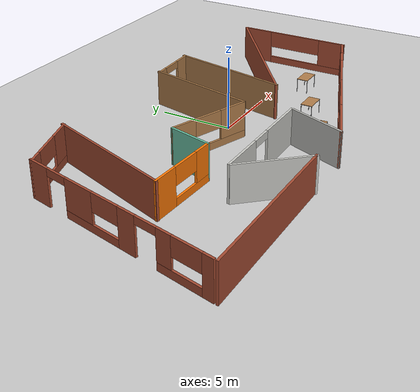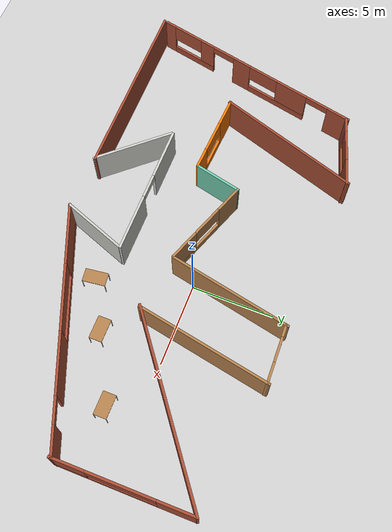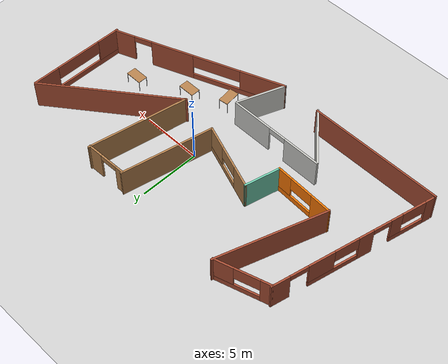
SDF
<sdf version="1.6">
 <world name="default">
  <model name="ground_plane">
   <static>1</static>
   <link name="link">
    <collision name="collision">
     <geometry><plane><normal>0 0 1</normal><size>100 100</size></plane></geometry>
     <surface><friction><ode><mu>100</mu><mu2>50</mu2></ode></friction></surface>
    </collision>
    <visual name="visual">
     <cast_shadows>0</cast_shadows>
     <geometry><plane><normal>0 0 1</normal><size>100 100</size></plane></geometry>
     <material>
      <script><uri>file://media/materials/scripts/gazebo.material</uri><name>Gazebo/Grey</name></script>
     </material>
    </visual>
   </link>
  </model>
  <model name="my_building">
   <pose>-1.82357 -0.88162 0 0 -0 0</pose>
   <link name="Wall_10">
    <pose>-7.20518 -1.23967 0 0 0 -0.053362</pose>
    <visual name="Wall_10_Visual_0">
     <pose>-1.65873 0 1.25 0 -0 0</pose>
     <geometry><box><size>1.79088 0.15 2.5</size></box></geometry>
     <material>
      <script><uri>file://media/materials/scripts/gazebo.material</uri><name>Gazebo/Grey</name></script>
      <ambient>0.996078 0.47451 0.0196078 1</ambient>
     </material>
    </visual>
    <collision name="Wall_10_Collision_0">
     <geometry><box><size>1.79088 0.15 2.5</size></box></geometry>
     <pose>-1.65873 0 1.25 0 -0 0</pose>
    </collision>
    <visual name="Wall_10_Visual_1">
     <pose>0.895442 0 0.25 0 -0 0</pose>
     <geometry><box><size>3.31746 0.15 0.5</size></box></geometry>
     <material>
      <script><uri>file://media/materials/scripts/gazebo.material</uri><name>Gazebo/Grey</name></script>
      <ambient>0.996078 0.47451 0.0196078 1</ambient>
     </material>
    </visual>
    <collision name="Wall_10_Collision_1">
     <geometry><box><size>3.31746 0.15 0.5</size></box></geometry>
     <pose>0.895442 0 0.25 0 -0 0</pose>
    </collision>
    <visual name="Wall_10_Visual_2">
     <pose>1.89544 0 1.5 0 -0 0</pose>
     <geometry><box><size>1.31746 0.15 2</size></box></geometry>
     <material>
      <script><uri>file://media/materials/scripts/gazebo.material</uri><name>Gazebo/Grey</name></script>
      <ambient>0.996078 0.47451 0.0196078 1</ambient>
     </material>
    </visual>
    <collision name="Wall_10_Collision_2">
     <geometry><box><size>1.31746 0.15 2</size></box></geometry>
     <pose>1.89544 0 1.5 0 -0 0</pose>
    </collision>
    <visual name="Wall_10_Visual_3">
     <pose>0.236711 0 1.9 0 -0 0</pose>
     <geometry><box><size>2 0.15 1.2</size></box></geometry>
     <material>
      <script><uri>file://media/materials/scripts/gazebo.material</uri><name>Gazebo/Grey</name></script>
      <ambient>0.996078 0.47451 0.0196078 1</ambient>
     </material>
    </visual>
    <collision name="Wall_10_Collision_3">
     <geometry><box><size>2 0.15 1.2</size></box></geometry>
     <pose>0.236711 0 1.9 0 -0 0</pose>
    </collision>
   </link>
   <link name="Wall_11">
    <collision name="Wall_11_Collision">
     <geometry><box><size>3.02948 0.15 2.5</size></box></geometry>
     <pose>0 0 1.25 0 -0 0</pose>
    </collision>
    <visual name="Wall_11_Visual">
     <pose>0 0 1.25 0 -0 0</pose>
     <geometry><box><size>3.02948 0.15 2.5</size></box></geometry>
     <material>
      <script><uri>file://media/materials/scripts/gazebo.material</uri><name>Gazebo/Grey</name></script>
      <ambient>0.435294 0.796078 0.67451 1</ambient>
     </material>
    </visual>
    <pose>-4.3944 0.028361 0 0 -0 1.33612</pose>
   </link>
   <link name="Wall_12">
    <pose>-1.39731 0.461222 0 0 0 -0.348539</pose>
    <visual name="Wall_12_Visual_0">
     <pose>-1.99563 0 1.25 0 -0 0</pose>
     <geometry><box><size>1.82401 0.15 2.5</size></box></geometry>
     <material>
      <script><uri>file://media/materials/scripts/gazebo.material</uri><name>Gazebo/Wood</name></script>
      <ambient>0.435294 0.796078 0.67451 1</ambient>
     </material>
    </visual>
    <collision name="Wall_12_Collision_0">
     <geometry><box><size>1.82401 0.15 2.5</size></box></geometry>
     <pose>-1.99563 0 1.25 0 -0 0</pose>
    </collision>
    <visual name="Wall_12_Visual_1">
     <pose>0.912006 0 0.25 0 -0 0</pose>
     <geometry><box><size>3.99125 0.15 0.5</size></box></geometry>
     <material>
      <script><uri>file://media/materials/scripts/gazebo.material</uri><name>Gazebo/Wood</name></script>
      <ambient>0.435294 0.796078 0.67451 1</ambient>
     </material>
    </visual>
    <collision name="Wall_12_Collision_1">
     <geometry><box><size>3.99125 0.15 0.5</size></box></geometry>
     <pose>0.912006 0 0.25 0 -0 0</pose>
    </collision>
    <visual name="Wall_12_Visual_2">
     <pose>1.91201 0 1.5 0 -0 0</pose>
     <geometry><box><size>1.99125 0.15 2</size></box></geometry>
     <material>
      <script><uri>file://media/materials/scripts/gazebo.material</uri><name>Gazebo/Wood</name></script>
      <ambient>0.435294 0.796078 0.67451 1</ambient>
     </material>
    </visual>
    <collision name="Wall_12_Collision_2">
     <geometry><box><size>1.99125 0.15 2</size></box></geometry>
     <pose>1.91201 0 1.5 0 -0 0</pose>
    </collision>
    <visual name="Wall_12_Visual_3">
     <pose>-0.083621 0 1.9 0 -0 0</pose>
     <geometry><box><size>2 0.15 1.2</size></box></geometry>
     <material>
      <script><uri>file://media/materials/scripts/gazebo.material</uri><name>Gazebo/Wood</name></script>
      <ambient>0.435294 0.796078 0.67451 1</ambient>
     </material>
    </visual>
    <collision name="Wall_12_Collision_3">
     <geometry><box><size>2 0.15 1.2</size></box></geometry>
     <pose>-0.083621 0 1.9 0 -0 0</pose>
    </collision>
   </link>
   <link name="Wall_13">
    <collision name="Wall_13_Collision">
     <geometry><box><size>7.73883 0.15 2.5</size></box></geometry>
     <pose>0 0 1.25 0 -0 0</pose>
    </collision>
    <visual name="Wall_13_Visual">
     <pose>0 0 1.25 0 -0 0</pose>
     <geometry><box><size>7.73883 0.15 2.5</size></box></geometry>
     <material>
      <script><uri>file://media/materials/scripts/gazebo.material</uri><name>Gazebo/Wood</name></script>
      <ambient>0.435294 0.796078 0.67451 1</ambient>
     </material>
    </visual>
    <pose>2.1093 3.20845 0 0 -0 1.36539</pose>
   </link>
   <link name="Wall_14">
    <pose>4.60393 6.87033 0 0 -0 0.030657</pose>
    <visual name="Wall_14_Visual_0">
     <pose>-1.41036 0 1.25 0 -0 0</pose>
     <geometry><box><size>0.772303 0.15 2.5</size></box></geometry>
     <material>
      <script><uri>file://media/materials/scripts/gazebo.material</uri><name>Gazebo/Wood</name></script>
      <ambient>1 1 1 1</ambient>
     </material>
    </visual>
    <collision name="Wall_14_Collision_0">
     <geometry><box><size>0.772303 0.15 2.5</size></box></geometry>
     <pose>-1.41036 0 1.25 0 -0 0</pose>
    </collision>
    <visual name="Wall_14_Visual_1">
     <pose>1.13615 0 1.25 0 -0 0</pose>
     <geometry><box><size>1.32072 0.15 2.5</size></box></geometry>
     <material>
      <script><uri>file://media/materials/scripts/gazebo.material</uri><name>Gazebo/Wood</name></script>
      <ambient>1 1 1 1</ambient>
     </material>
    </visual>
    <collision name="Wall_14_Collision_1">
     <geometry><box><size>1.32072 0.15 2.5</size></box></geometry>
     <pose>1.13615 0 1.25 0 -0 0</pose>
    </collision>
    <visual name="Wall_14_Visual_2">
     <pose>-0.27421 0 2.25 0 -0 0</pose>
     <geometry><box><size>1.5 0.15 0.5</size></box></geometry>
     <material>
      <script><uri>file://media/materials/scripts/gazebo.material</uri><name>Gazebo/Wood</name></script>
      <ambient>1 1 1 1</ambient>
     </material>
    </visual>
    <collision name="Wall_14_Collision_2">
     <geometry><box><size>1.5 0.15 0.5</size></box></geometry>
     <pose>-0.27421 0 2.25 0 -0 0</pose>
    </collision>
   </link>
   <link name="Wall_15">
    <collision name="Wall_15_Collision">
     <geometry><box><size>8.47447 0.15 2.5</size></box></geometry>
     <pose>0 0 1.25 0 -0 0</pose>
    </collision>
    <visual name="Wall_15_Visual">
     <pose>0 0 1.25 0 -0 0</pose>
     <geometry><box><size>8.47447 0.15 2.5</size></box></geometry>
     <material>
      <script><uri>file://media/materials/scripts/gazebo.material</uri><name>Gazebo/Wood</name></script>
      <ambient>1 1 1 1</ambient>
     </material>
    </visual>
    <pose>5.55071 2.93899 0 0 0 -1.75783</pose>
   </link>
   <link name="Wall_16">
    <collision name="Wall_16_Collision">
     <geometry><box><size>11.8484 0.15 2.5</size></box></geometry>
     <pose>0 0 1.25 0 -0 0</pose>
    </collision>
    <visual name="Wall_16_Visual">
     <pose>0 0 1.25 0 -0 0</pose>
     <geometry><box><size>11.8484 0.15 2.5</size></box></geometry>
     <material>
      <script><uri>file://media/materials/scripts/gazebo.material</uri><name>Gazebo/Bricks</name></script>
      <ambient>0.760784 0.662745 0.627451 1</ambient>
     </material>
    </visual>
    <pose>9.36619 2.38481 0 0 -0 0.649059</pose>
   </link>
   <link name="Wall_17">
    <pose>14.026 1.76474 0 0 0 -1.5708</pose>
    <visual name="Wall_17_Visual_0">
     <pose>-3.02356 0 1.25 0 -0 0</pose>
     <geometry><box><size>2.20289 0.15 2.5</size></box></geometry>
     <material>
      <script><uri>file://media/materials/scripts/gazebo.material</uri><name>Gazebo/Bricks</name></script>
      <ambient>0.760784 0.662745 0.627451 1</ambient>
     </material>
    </visual>
    <collision name="Wall_17_Collision_0">
     <geometry><box><size>2.20289 0.15 2.5</size></box></geometry>
     <pose>-3.02356 0 1.25 0 -0 0</pose>
    </collision>
    <visual name="Wall_17_Visual_1">
     <pose>1.10144 0 0.25 0 -0 0</pose>
     <geometry><box><size>6.04711 0.15 0.5</size></box></geometry>
     <material>
      <script><uri>file://media/materials/scripts/gazebo.material</uri><name>Gazebo/Bricks</name></script>
      <ambient>0.760784 0.662745 0.627451 1</ambient>
     </material>
    </visual>
    <collision name="Wall_17_Collision_1">
     <geometry><box><size>6.04711 0.15 0.5</size></box></geometry>
     <pose>1.10144 0 0.25 0 -0 0</pose>
    </collision>
    <visual name="Wall_17_Visual_2">
     <pose>3.10144 0 1.5 0 -0 0</pose>
     <geometry><box><size>2.04711 0.15 2</size></box></geometry>
     <material>
      <script><uri>file://media/materials/scripts/gazebo.material</uri><name>Gazebo/Bricks</name></script>
      <ambient>0.760784 0.662745 0.627451 1</ambient>
     </material>
    </visual>
    <collision name="Wall_17_Collision_2">
     <geometry><box><size>2.04711 0.15 2</size></box></geometry>
     <pose>3.10144 0 1.5 0 -0 0</pose>
    </collision>
    <visual name="Wall_17_Visual_3">
     <pose>0.077887 0 1.9 0 -0 0</pose>
     <geometry><box><size>4 0.15 1.2</size></box></geometry>
     <material>
      <script><uri>file://media/materials/scripts/gazebo.material</uri><name>Gazebo/Bricks</name></script>
      <ambient>0.760784 0.662745 0.627451 1</ambient>
     </material>
    </visual>
    <collision name="Wall_17_Collision_3">
     <geometry><box><size>4 0.15 1.2</size></box></geometry>
     <pose>0.077887 0 1.9 0 -0 0</pose>
    </collision>
   </link>
   <link name="Wall_18">
    <pose>7.23317 -4.80054 0 0 0 -2.77337</pose>
    <visual name="Wall_18_Visual_0">
     <pose>-6.47131 0 1.25 0 -0 0</pose>
     <geometry><box><size>1.76906 0.15 2.5</size></box></geometry>
     <material>
      <script><uri>file://media/materials/scripts/gazebo.material</uri><name>Gazebo/Bricks</name></script>
      <ambient>0.760784 0.662745 0.627451 1</ambient>
     </material>
    </visual>
    <collision name="Wall_18_Collision_0">
     <geometry><box><size>1.76906 0.15 2.5</size></box></geometry>
     <pose>-6.47131 0 1.25 0 -0 0</pose>
    </collision>
    <visual name="Wall_18_Visual_1">
     <pose>-2.27515 0 1.25 0 -0 0</pose>
     <geometry><box><size>3.62326 0.15 2.5</size></box></geometry>
     <material>
      <script><uri>file://media/materials/scripts/gazebo.material</uri><name>Gazebo/Bricks</name></script>
      <ambient>0.760784 0.662745 0.627451 1</ambient>
     </material>
    </visual>
    <collision name="Wall_18_Collision_1">
     <geometry><box><size>3.62326 0.15 2.5</size></box></geometry>
     <pose>-2.27515 0 1.25 0 -0 0</pose>
    </collision>
    <visual name="Wall_18_Visual_2">
     <pose>3.44616 0 0.25 0 -0 0</pose>
     <geometry><box><size>7.81937 0.15 0.5</size></box></geometry>
     <material>
      <script><uri>file://media/materials/scripts/gazebo.material</uri><name>Gazebo/Bricks</name></script>
      <ambient>0.760784 0.662745 0.627451 1</ambient>
     </material>
    </visual>
    <collision name="Wall_18_Collision_2">
     <geometry><box><size>7.81937 0.15 0.5</size></box></geometry>
     <pose>3.44616 0 0.25 0 -0 0</pose>
    </collision>
    <visual name="Wall_18_Visual_3">
     <pose>5.44616 0 1.5 0 -0 0</pose>
     <geometry><box><size>3.81937 0.15 2</size></box></geometry>
     <material>
      <script><uri>file://media/materials/scripts/gazebo.material</uri><name>Gazebo/Bricks</name></script>
      <ambient>0.760784 0.662745 0.627451 1</ambient>
     </material>
    </visual>
    <collision name="Wall_18_Collision_3">
     <geometry><box><size>3.81937 0.15 2</size></box></geometry>
     <pose>5.44616 0 1.5 0 -0 0</pose>
    </collision>
    <visual name="Wall_18_Visual_4">
     <pose>1.53648 0 1.9 0 -0 0</pose>
     <geometry><box><size>4 0.15 1.2</size></box></geometry>
     <material>
      <script><uri>file://media/materials/scripts/gazebo.material</uri><name>Gazebo/Bricks</name></script>
      <ambient>0.760784 0.662745 0.627451 1</ambient>
     </material>
    </visual>
    <collision name="Wall_18_Collision_4">
     <geometry><box><size>4 0.15 1.2</size></box></geometry>
     <pose>1.53648 0 1.9 0 -0 0</pose>
    </collision>
    <visual name="Wall_18_Visual_5">
     <pose>-4.83679 0 2.25 0 -0 0</pose>
     <geometry><box><size>1.5 0.15 0.5</size></box></geometry>
     <material>
      <script><uri>file://media/materials/scripts/gazebo.material</uri><name>Gazebo/Bricks</name></script>
      <ambient>0.760784 0.662745 0.627451 1</ambient>
     </material>
    </visual>
    <collision name="Wall_18_Collision_5">
     <geometry><box><size>1.5 0.15 0.5</size></box></geometry>
     <pose>-4.83679 0 2.25 0 -0 0</pose>
    </collision>
   </link>
   <link name="Wall_19">
    <collision name="Wall_19_Collision">
     <geometry><box><size>4.1326 0.15 2.5</size></box></geometry>
     <pose>0 0 1.25 0 -0 0</pose>
    </collision>
    <visual name="Wall_19_Visual">
     <pose>0 0 1.25 0 -0 0</pose>
     <geometry><box><size>4.1326 0.15 2.5</size></box></geometry>
     <material>
      <script><uri>file://media/materials/scripts/gazebo.material</uri><name>Gazebo/CeilingTiled</name></script>
      <ambient>1 1 1 1</ambient>
     </material>
    </visual>
    <pose>1.14396 -5.5585 0 0 -0 1.20967</pose>
   </link>
   <link name="Wall_20">
    <pose>-2.20247 -3.5901 0 0 -0 3.14159</pose>
    <visual name="Wall_20_Visual_0">
     <pose>-2.34523 0 1.25 0 -0 0</pose>
     <geometry><box><size>3.55955 0.15 2.5</size></box></geometry>
     <material>
      <script><uri>file://media/materials/scripts/gazebo.material</uri><name>Gazebo/CeilingTiled</name></script>
      <ambient>0.921569 0.807843 0.615686 1</ambient>
     </material>
    </visual>
    <collision name="Wall_20_Collision_0">
     <geometry><box><size>3.55955 0.15 2.5</size></box></geometry>
     <pose>-2.34523 0 1.25 0 -0 0</pose>
    </collision>
    <visual name="Wall_20_Visual_1">
     <pose>2.52977 0 1.25 0 -0 0</pose>
     <geometry><box><size>3.19045 0.15 2.5</size></box></geometry>
     <material>
      <script><uri>file://media/materials/scripts/gazebo.material</uri><name>Gazebo/CeilingTiled</name></script>
      <ambient>0.921569 0.807843 0.615686 1</ambient>
     </material>
    </visual>
    <collision name="Wall_20_Collision_1">
     <geometry><box><size>3.19045 0.15 2.5</size></box></geometry>
     <pose>2.52977 0 1.25 0 -0 0</pose>
    </collision>
    <visual name="Wall_20_Visual_2">
     <pose>0.184548 0 2.25 0 -0 0</pose>
     <geometry><box><size>1.5 0.15 0.5</size></box></geometry>
     <material>
      <script><uri>file://media/materials/scripts/gazebo.material</uri><name>Gazebo/CeilingTiled</name></script>
      <ambient>0.921569 0.807843 0.615686 1</ambient>
     </material>
    </visual>
    <collision name="Wall_20_Collision_2">
     <geometry><box><size>1.5 0.15 0.5</size></box></geometry>
     <pose>0.184548 0 2.25 0 -0 0</pose>
    </collision>
   </link>
   <link name="Wall_21">
    <collision name="Wall_21_Collision">
     <geometry><box><size>5.09839 0.15 2.5</size></box></geometry>
     <pose>0 0 1.25 0 -0 0</pose>
    </collision>
    <visual name="Wall_21_Visual">
     <pose>0 0 1.25 0 -0 0</pose>
     <geometry><box><size>5.09839 0.15 2.5</size></box></geometry>
     <material>
      <script><uri>file://media/materials/scripts/gazebo.material</uri><name>Gazebo/CeilingTiled</name></script>
      <ambient>0.921569 0.807843 0.615686 1</ambient>
     </material>
    </visual>
    <pose>-4.60426 -5.54091 0 0 0 -0.841746</pose>
   </link>
   <link name="Wall_22">
    <collision name="Wall_22_Collision">
     <geometry><box><size>11.25 0.15 2.5</size></box></geometry>
     <pose>0 0 1.25 0 -0 0</pose>
    </collision>
    <visual name="Wall_22_Visual">
     <pose>0 0 1.25 0 -0 0</pose>
     <geometry><box><size>11.25 0.15 2.5</size></box></geometry>
     <material>
      <script><uri>file://media/materials/scripts/gazebo.material</uri><name>Gazebo/Bricks</name></script>
      <ambient>0.996078 0.47451 0.0196078 1</ambient>
     </material>
    </visual>
    <pose>-8.50604 -7.31583 0 0 -0 3.14159</pose>
   </link>
   <link name="Wall_7">
    <pose>-12.5684 -0.491172 0 0 -0 1.35294</pose>
    <visual name="Wall_7_Visual_0">
     <pose>-6.46291 0 1.25 0 -0 0</pose>
     <geometry><box><size>0.733183 0.15 2.5</size></box></geometry>
     <material>
      <script><uri>file://media/materials/scripts/gazebo.material</uri><name>Gazebo/Bricks</name></script>
      <ambient>0.996078 0.47451 0.0196078 1</ambient>
     </material>
    </visual>
    <collision name="Wall_7_Collision_0">
     <geometry><box><size>0.733183 0.15 2.5</size></box></geometry>
     <pose>-6.46291 0 1.25 0 -0 0</pose>
    </collision>
    <visual name="Wall_7_Visual_1">
     <pose>-0.982571 0 1.25 0 -0 0</pose>
     <geometry><box><size>1.23194 0.15 2.5</size></box></geometry>
     <material>
      <script><uri>file://media/materials/scripts/gazebo.material</uri><name>Gazebo/Bricks</name></script>
      <ambient>0.996078 0.47451 0.0196078 1</ambient>
     </material>
    </visual>
    <collision name="Wall_7_Collision_1">
     <geometry><box><size>1.23194 0.15 2.5</size></box></geometry>
     <pose>-0.982571 0 1.25 0 -0 0</pose>
    </collision>
    <visual name="Wall_7_Visual_2">
     <pose>6.05834 0 1.25 0 -0 0</pose>
     <geometry><box><size>1.54232 0.15 2.5</size></box></geometry>
     <material>
      <script><uri>file://media/materials/scripts/gazebo.material</uri><name>Gazebo/Bricks</name></script>
      <ambient>0.996078 0.47451 0.0196078 1</ambient>
     </material>
    </visual>
    <collision name="Wall_7_Collision_2">
     <geometry><box><size>1.54232 0.15 2.5</size></box></geometry>
     <pose>6.05834 0 1.25 0 -0 0</pose>
    </collision>
    <visual name="Wall_7_Visual_3">
     <pose>-4.59743 0 0.25 0 -0 0</pose>
     <geometry><box><size>2.99777 0.15 0.5</size></box></geometry>
     <material>
      <script><uri>file://media/materials/scripts/gazebo.material</uri><name>Gazebo/Bricks</name></script>
      <ambient>0.996078 0.47451 0.0196078 1</ambient>
     </material>
    </visual>
    <collision name="Wall_7_Collision_3">
     <geometry><box><size>2.99777 0.15 0.5</size></box></geometry>
     <pose>-4.59743 0 0.25 0 -0 0</pose>
    </collision>
    <visual name="Wall_7_Visual_4">
     <pose>1.71029 0 0.25 0 -0 0</pose>
     <geometry><box><size>4.15378 0.15 0.5</size></box></geometry>
     <material>
      <script><uri>file://media/materials/scripts/gazebo.material</uri><name>Gazebo/Bricks</name></script>
      <ambient>0.996078 0.47451 0.0196078 1</ambient>
     </material>
    </visual>
    <collision name="Wall_7_Collision_4">
     <geometry><box><size>4.15378 0.15 0.5</size></box></geometry>
     <pose>1.71029 0 0.25 0 -0 0</pose>
    </collision>
    <visual name="Wall_7_Visual_5">
     <pose>-3.59743 0 1.5 0 -0 0</pose>
     <geometry><box><size>0.997774 0.15 2</size></box></geometry>
     <material>
      <script><uri>file://media/materials/scripts/gazebo.material</uri><name>Gazebo/Bricks</name></script>
      <ambient>0.996078 0.47451 0.0196078 1</ambient>
     </material>
    </visual>
    <collision name="Wall_7_Collision_5">
     <geometry><box><size>0.997774 0.15 2</size></box></geometry>
     <pose>-3.59743 0 1.5 0 -0 0</pose>
    </collision>
    <visual name="Wall_7_Visual_6">
     <pose>-3.59743 0 1.5 0 -0 0</pose>
     <geometry><box><size>0.997774 0.15 2</size></box></geometry>
     <material>
      <script><uri>file://media/materials/scripts/gazebo.material</uri><name>Gazebo/Bricks</name></script>
      <ambient>0.996078 0.47451 0.0196078 1</ambient>
     </material>
    </visual>
    <collision name="Wall_7_Collision_6">
     <geometry><box><size>0.997774 0.15 2</size></box></geometry>
     <pose>-3.59743 0 1.5 0 -0 0</pose>
    </collision>
    <visual name="Wall_7_Visual_7">
     <pose>2.71029 0 1.5 0 -0 0</pose>
     <geometry><box><size>2.15378 0.15 2</size></box></geometry>
     <material>
      <script><uri>file://media/materials/scripts/gazebo.material</uri><name>Gazebo/Bricks</name></script>
      <ambient>0.996078 0.47451 0.0196078 1</ambient>
     </material>
    </visual>
    <collision name="Wall_7_Collision_7">
     <geometry><box><size>2.15378 0.15 2</size></box></geometry>
     <pose>2.71029 0 1.5 0 -0 0</pose>
    </collision>
    <visual name="Wall_7_Visual_8">
     <pose>-5.09631 0 1.9 0 -0 0</pose>
     <geometry><box><size>2 0.15 1.2</size></box></geometry>
     <material>
      <script><uri>file://media/materials/scripts/gazebo.material</uri><name>Gazebo/Bricks</name></script>
      <ambient>0.996078 0.47451 0.0196078 1</ambient>
     </material>
    </visual>
    <collision name="Wall_7_Collision_8">
     <geometry><box><size>2 0.15 1.2</size></box></geometry>
     <pose>-5.09631 0 1.9 0 -0 0</pose>
    </collision>
    <visual name="Wall_7_Visual_9">
     <pose>0.633398 0 1.9 0 -0 0</pose>
     <geometry><box><size>2 0.15 1.2</size></box></geometry>
     <material>
      <script><uri>file://media/materials/scripts/gazebo.material</uri><name>Gazebo/Bricks</name></script>
      <ambient>0.996078 0.47451 0.0196078 1</ambient>
     </material>
    </visual>
    <collision name="Wall_7_Collision_9">
     <geometry><box><size>2 0.15 1.2</size></box></geometry>
     <pose>0.633398 0 1.9 0 -0 0</pose>
    </collision>
    <visual name="Wall_7_Visual_10">
     <pose>-2.34854 0 2.25 0 -0 0</pose>
     <geometry><box><size>1.5 0.15 0.5</size></box></geometry>
     <material>
      <script><uri>file://media/materials/scripts/gazebo.material</uri><name>Gazebo/Bricks</name></script>
      <ambient>0.996078 0.47451 0.0196078 1</ambient>
     </material>
    </visual>
    <collision name="Wall_7_Collision_10">
     <geometry><box><size>1.5 0.15 0.5</size></box></geometry>
     <pose>-2.34854 0 2.25 0 -0 0</pose>
    </collision>
    <visual name="Wall_7_Visual_11">
     <pose>-2.34854 0 2.25 0 -0 0</pose>
     <geometry><box><size>1.5 0.15 0.5</size></box></geometry>
     <material>
      <script><uri>file://media/materials/scripts/gazebo.material</uri><name>Gazebo/Bricks</name></script>
      <ambient>0.996078 0.47451 0.0196078 1</ambient>
     </material>
    </visual>
    <collision name="Wall_7_Collision_11">
     <geometry><box><size>1.5 0.15 0.5</size></box></geometry>
     <pose>-2.34854 0 2.25 0 -0 0</pose>
    </collision>
    <visual name="Wall_7_Visual_12">
     <pose>4.53718 0 2.25 0 -0 0</pose>
     <geometry><box><size>1.5 0.15 0.5</size></box></geometry>
     <material>
      <script><uri>file://media/materials/scripts/gazebo.material</uri><name>Gazebo/Bricks</name></script>
      <ambient>0.996078 0.47451 0.0196078 1</ambient>
     </material>
    </visual>
    <collision name="Wall_7_Collision_12">
     <geometry><box><size>1.5 0.15 0.5</size></box></geometry>
     <pose>4.53718 0 2.25 0 -0 0</pose>
    </collision>
   </link>
   <link name="Wall_8">
    <pose>-8.97514 6.65806 0 0 -0 0.299999</pose>
    <visual name="Wall_8_Visual_0">
     <pose>-1.83868 0 1.25 0 -0 0</pose>
     <geometry><box><size>0.938894 0.15 2.5</size></box></geometry>
     <material>
      <script><uri>file://media/materials/scripts/gazebo.material</uri><name>Gazebo/Bricks</name></script>
      <ambient>0.996078 0.47451 0.0196078 1</ambient>
     </material>
    </visual>
    <collision name="Wall_8_Collision_0">
     <geometry><box><size>0.938894 0.15 2.5</size></box></geometry>
     <pose>-1.83868 0 1.25 0 -0 0</pose>
    </collision>
    <visual name="Wall_8_Visual_1">
     <pose>0.469447 0 0.25 0 -0 0</pose>
     <geometry><box><size>3.67735 0.15 0.5</size></box></geometry>
     <material>
      <script><uri>file://media/materials/scripts/gazebo.material</uri><name>Gazebo/Bricks</name></script>
      <ambient>0.996078 0.47451 0.0196078 1</ambient>
     </material>
    </visual>
    <collision name="Wall_8_Collision_1">
     <geometry><box><size>3.67735 0.15 0.5</size></box></geometry>
     <pose>0.469447 0 0.25 0 -0 0</pose>
    </collision>
    <visual name="Wall_8_Visual_2">
     <pose>1.46945 0 1.5 0 -0 0</pose>
     <geometry><box><size>1.67735 0.15 2</size></box></geometry>
     <material>
      <script><uri>file://media/materials/scripts/gazebo.material</uri><name>Gazebo/Bricks</name></script>
      <ambient>0.996078 0.47451 0.0196078 1</ambient>
     </material>
    </visual>
    <collision name="Wall_8_Collision_2">
     <geometry><box><size>1.67735 0.15 2</size></box></geometry>
     <pose>1.46945 0 1.5 0 -0 0</pose>
    </collision>
    <visual name="Wall_8_Visual_3">
     <pose>-0.369229 0 1.9 0 -0 0</pose>
     <geometry><box><size>2 0.15 1.2</size></box></geometry>
     <material>
      <script><uri>file://media/materials/scripts/gazebo.material</uri><name>Gazebo/Bricks</name></script>
      <ambient>0.996078 0.47451 0.0196078 1</ambient>
     </material>
    </visual>
    <collision name="Wall_8_Collision_3">
     <geometry><box><size>2 0.15 1.2</size></box></geometry>
     <pose>-0.369229 0 1.9 0 -0 0</pose>
    </collision>
   </link>
   <link name="Wall_9">
    <collision name="Wall_9_Collision">
     <geometry><box><size>9.16616 0.15 2.5</size></box></geometry>
     <pose>0 0 1.25 0 -0 0</pose>
    </collision>
    <visual name="Wall_9_Visual">
     <pose>0 0 1.25 0 -0 0</pose>
     <geometry><box><size>9.16616 0.15 2.5</size></box></geometry>
     <material>
      <script><uri>file://media/materials/scripts/gazebo.material</uri><name>Gazebo/Bricks</name></script>
      <ambient>0.921569 0.807843 0.615686 1</ambient>
     </material>
    </visual>
    <pose>-8.26146 3.14483 0 0 0 -1.89117</pose>
   </link>
   <static>1</static>
  </model>
  <model name="table_1">
   <static>0</static>
   <link name="link">
    <collision name="surface">
     <pose>0 0 1 0 -0 0</pose>
     <geometry><box><size>1.5 0.8 0.03</size></box></geometry>
     <surface><friction><ode><mu>0.6</mu><mu2>0.6</mu2></ode></friction></surface>
    </collision>
    <visual name="visual1">
     <pose>0 0 1 0 -0 0</pose>
     <geometry><box><size>1.4 0.8 0.04</size></box></geometry>
     <material>
      <script><uri>file://media/materials/scripts/gazebo.material</uri><name>Gazebo/Wood</name></script>
     </material>
    </visual>
    <collision name="front_left_leg">
     <pose>0.68 0.38 0.5 0 -0 0</pose>
     <geometry><cylinder><radius>0.02</radius><length>1</length></cylinder></geometry>
    </collision>
    <visual name="front_left_leg">
     <pose>0.68 0.38 0.5 0 -0 0</pose>
     <geometry><cylinder><radius>0.02</radius><length>1</length></cylinder></geometry>
     <material>
      <script><uri>file://media/materials/scripts/gazebo.material</uri><name>Gazebo/Grey</name></script>
     </material>
    </visual>
    <collision name="front_right_leg">
     <pose>0.68 -0.38 0.5 0 -0 0</pose>
     <geometry><cylinder><radius>0.02</radius><length>1</length></cylinder></geometry>
    </collision>
    <visual name="front_right_leg">
     <pose>0.68 -0.38 0.5 0 -0 0</pose>
     <geometry><cylinder><radius>0.02</radius><length>1</length></cylinder></geometry>
     <material>
      <script><uri>file://media/materials/scripts/gazebo.material</uri><name>Gazebo/Grey</name></script>
     </material>
    </visual>
    <collision name="back_right_leg">
     <pose>-0.68 -0.38 0.5 0 -0 0</pose>
     <geometry><cylinder><radius>0.02</radius><length>1</length></cylinder></geometry>
    </collision>
    <visual name="back_right_leg">
     <pose>-0.68 -0.38 0.5 0 -0 0</pose>
     <geometry><cylinder><radius>0.02</radius><length>1</length></cylinder></geometry>
     <material>
      <script><uri>file://media/materials/scripts/gazebo.material</uri><name>Gazebo/Grey</name></script>
     </material>
    </visual>
    <collision name="back_left_leg">
     <pose>-0.68 0.38 0.5 0 -0 0</pose>
     <geometry><cylinder><radius>0.02</radius><length>1</length></cylinder></geometry>
    </collision>
    <visual name="back_left_leg">
     <pose>-0.68 0.38 0.5 0 -0 0</pose>
     <geometry><cylinder><radius>0.02</radius><length>1</length></cylinder></geometry>
     <material>
      <script><uri>file://media/materials/scripts/gazebo.material</uri><name>Gazebo/Grey</name></script>
     </material>
    </visual>
    <inertial>
     <inertia><ixx>1</ixx><ixy>0</ixy><ixz>0</ixz><iyy>1</iyy><iyz>0</iyz><izz>1</izz></inertia>
     <mass>1</mass>
    </inertial>
   </link>
   <pose>8.45566 -1.85589 -9e-06 0 -0 0</pose>
  </model>
  <model name="table_2">
   <static>0</static>
   <link name="link">
    <collision name="surface">
     <pose>0 0 1 0 -0 0</pose>
     <geometry><box><size>1.5 0.8 0.03</size></box></geometry>
     <surface><friction><ode><mu>0.6</mu><mu2>0.6</mu2></ode></friction></surface>
    </collision>
    <visual name="visual1">
     <pose>0 0 1 0 -0 0</pose>
     <geometry><box><size>1.4 0.8 0.04</size></box></geometry>
     <material>
      <script><uri>file://media/materials/scripts/gazebo.material</uri><name>Gazebo/Wood</name></script>
     </material>
    </visual>
    <collision name="front_left_leg">
     <pose>0.68 0.38 0.5 0 -0 0</pose>
     <geometry><cylinder><radius>0.02</radius><length>1</length></cylinder></geometry>
    </collision>
    <visual name="front_left_leg">
     <pose>0.68 0.38 0.5 0 -0 0</pose>
     <geometry><cylinder><radius>0.02</radius><length>1</length></cylinder></geometry>
     <material>
      <script><uri>file://media/materials/scripts/gazebo.material</uri><name>Gazebo/Grey</name></script>
     </material>
    </visual>
    <collision name="front_right_leg">
     <pose>0.68 -0.38 0.5 0 -0 0</pose>
     <geometry><cylinder><radius>0.02</radius><length>1</length></cylinder></geometry>
    </collision>
    <visual name="front_right_leg">
     <pose>0.68 -0.38 0.5 0 -0 0</pose>
     <geometry><cylinder><radius>0.02</radius><length>1</length></cylinder></geometry>
     <material>
      <script><uri>file://media/materials/scripts/gazebo.material</uri><name>Gazebo/Grey</name></script>
     </material>
    </visual>
    <collision name="back_right_leg">
     <pose>-0.68 -0.38 0.5 0 -0 0</pose>
     <geometry><cylinder><radius>0.02</radius><length>1</length></cylinder></geometry>
    </collision>
    <visual name="back_right_leg">
     <pose>-0.68 -0.38 0.5 0 -0 0</pose>
     <geometry><cylinder><radius>0.02</radius><length>1</length></cylinder></geometry>
     <material>
      <script><uri>file://media/materials/scripts/gazebo.material</uri><name>Gazebo/Grey</name></script>
     </material>
    </visual>
    <collision name="back_left_leg">
     <pose>-0.68 0.38 0.5 0 -0 0</pose>
     <geometry><cylinder><radius>0.02</radius><length>1</length></cylinder></geometry>
    </collision>
    <visual name="back_left_leg">
     <pose>-0.68 0.38 0.5 0 -0 0</pose>
     <geometry><cylinder><radius>0.02</radius><length>1</length></cylinder></geometry>
     <material>
      <script><uri>file://media/materials/scripts/gazebo.material</uri><name>Gazebo/Grey</name></script>
     </material>
    </visual>
    <inertial>
     <inertia><ixx>1</ixx><ixy>0</ixy><ixz>0</ixz><iyy>1</iyy><iyz>0</iyz><izz>1</izz></inertia>
     <mass>1</mass>
    </inertial>
   </link>
   <pose>4.57381 -3.86832 -1e-06 0 1e-06 0</pose>
  </model>
  <model name="table_3">
   <static>0</static>
   <link name="link">
    <collision name="surface">
     <pose>0 0 1 0 -0 0</pose>
     <geometry><box><size>1.5 0.8 0.03</size></box></geometry>
     <surface><friction><ode><mu>0.6</mu><mu2>0.6</mu2></ode></friction></surface>
    </collision>
    <visual name="visual1">
     <pose>0 0 1 0 -0 0</pose>
     <geometry><box><size>1.4 0.8 0.04</size></box></geometry>
     <material>
      <script><uri>file://media/materials/scripts/gazebo.material</uri><name>Gazebo/Wood</name></script>
     </material>
    </visual>
    <collision name="front_left_leg">
     <pose>0.68 0.38 0.5 0 -0 0</pose>
     <geometry><cylinder><radius>0.02</radius><length>1</length></cylinder></geometry>
    </collision>
    <visual name="front_left_leg">
     <pose>0.68 0.38 0.5 0 -0 0</pose>
     <geometry><cylinder><radius>0.02</radius><length>1</length></cylinder></geometry>
     <material>
      <script><uri>file://media/materials/scripts/gazebo.material</uri><name>Gazebo/Grey</name></script>
     </material>
    </visual>
    <collision name="front_right_leg">
     <pose>0.68 -0.38 0.5 0 -0 0</pose>
     <geometry><cylinder><radius>0.02</radius><length>1</length></cylinder></geometry>
    </collision>
    <visual name="front_right_leg">
     <pose>0.68 -0.38 0.5 0 -0 0</pose>
     <geometry><cylinder><radius>0.02</radius><length>1</length></cylinder></geometry>
     <material>
      <script><uri>file://media/materials/scripts/gazebo.material</uri><name>Gazebo/Grey</name></script>
     </material>
    </visual>
    <collision name="back_right_leg">
     <pose>-0.68 -0.38 0.5 0 -0 0</pose>
     <geometry><cylinder><radius>0.02</radius><length>1</length></cylinder></geometry>
    </collision>
    <visual name="back_right_leg">
     <pose>-0.68 -0.38 0.5 0 -0 0</pose>
     <geometry><cylinder><radius>0.02</radius><length>1</length></cylinder></geometry>
     <material>
      <script><uri>file://media/materials/scripts/gazebo.material</uri><name>Gazebo/Grey</name></script>
     </material>
    </visual>
    <collision name="back_left_leg">
     <pose>-0.68 0.38 0.5 0 -0 0</pose>
     <geometry><cylinder><radius>0.02</radius><length>1</length></cylinder></geometry>
    </collision>
    <visual name="back_left_leg">
     <pose>-0.68 0.38 0.5 0 -0 0</pose>
     <geometry><cylinder><radius>0.02</radius><length>1</length></cylinder></geometry>
     <material>
      <script><uri>file://media/materials/scripts/gazebo.material</uri><name>Gazebo/Grey</name></script>
     </material>
    </visual>
    <inertial>
     <inertia><ixx>1</ixx><ixy>0</ixy><ixz>0</ixz><iyy>1</iyy><iyz>0</iyz><izz>1</izz></inertia>
     <mass>1</mass>
    </inertial>
   </link>
   <pose>1.79225 -5.41635 -8e-06 0 0 -1.44794</pose>
  </model>
 </world>
</sdf>
